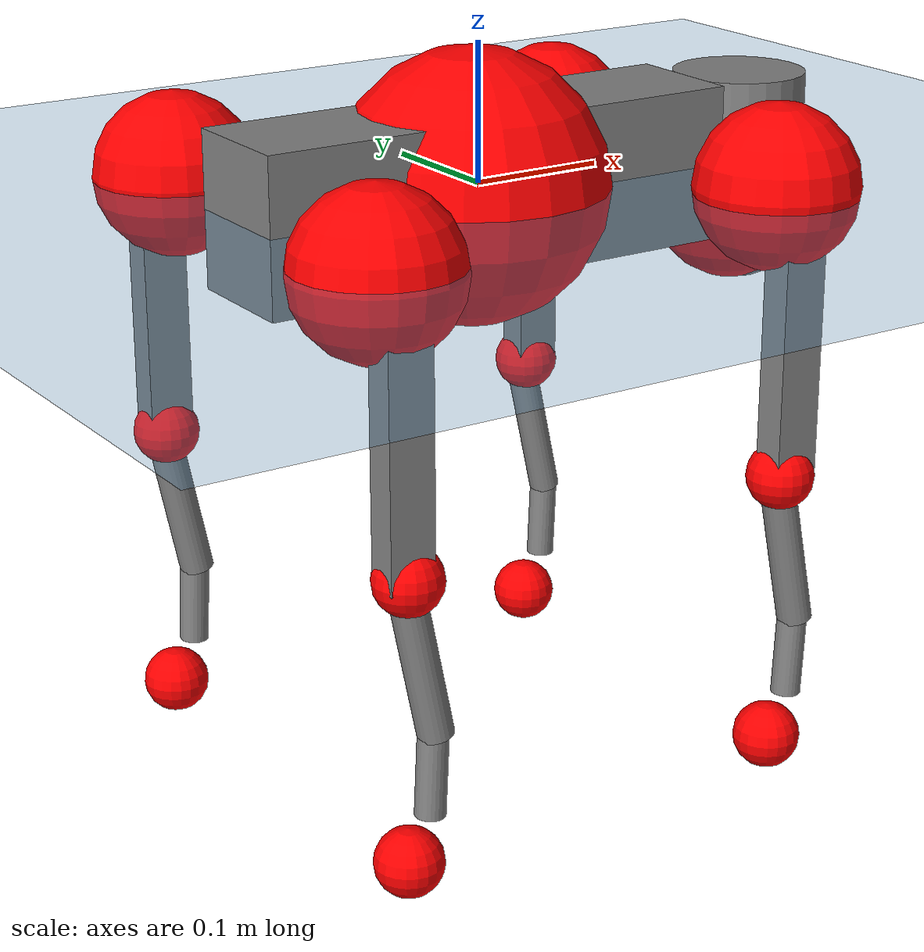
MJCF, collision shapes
<mujoco model="go2">
  <compiler angle="radian" assetdir="assets" balanceinertia="true" inertiafromgeom="false"/>

  <option timestep="0.005" density="1.2" viscosity="2e-05"/>

  <size nkey="1"/>

  <visual>
    <quality shadowsize="8192"/>
    <map shadowclip="0.5"/>
  </visual>

  <default>
    <default class="/">
      <geom contype="0" conaffinity="0" group="1" solref="-1000 -80"/>
      <site size="0.01 0.005 0.005" group="5"/>
      <general forcelimited="true" biastype="affine" gainprm="20" biasprm="0 -20 -0.5"/>
      <default class="go2">
        <joint armature="0.01" damping="0.01" frictionloss="0.2"/>
        <geom condim="1" margin="0.001"/>
        <default class="visual">
          <geom type="mesh" group="2"/>
        </default>
        <default class="collision">
          <geom group="3"/>
          <default class="foot">
            <geom size="0.022 0 0" condim="6" priority="1" friction="0.8 0.02 0.01" solimp="0.015 1 0.022"/>
          </default>
        </default>
        <default class="reward_collision_sphere">
          <geom group="5" rgba="1 0 0 1"/>
        </default>
      </default>
    </default>
  </default>

  <asset>
    <texture type="skybox" colorspace="auto" name="//unnamed_texture_0" builtin="gradient" rgb1="0.95 0.95 0.95" rgb2="0.95 0.95 0.95" width="100" height="600"/>
    <texture type="2d" colorspace="auto" name="texplane" builtin="checker" rgb1="0.345 0.575 0.748" rgb2="0.345 0.575 0.748" markrgb="1 1 1" width="512" height="512"/>
    <material name="MatPlane" class="/" texture="texplane" texuniform="true" texrepeat="2 2" specular="0.9"/>
    <material name="metal" class="/" rgba="0.9 0.95 0.95 1"/>
    <material name="black" class="/" rgba="0 0 0 1"/>
    <material name="white" class="/"/>
    <material name="gray" class="/" rgba="0.671705 0.692426 0.77427 1"/>
    <mesh name="base_0" class="/" file="base_0.obj"/>
    <mesh name="base_1" class="/" file="base_1.obj"/>
    <mesh name="base_2" class="/" file="base_2.obj"/>
    <mesh name="base_3" class="/" file="base_3.obj"/>
    <mesh name="base_4" class="/" file="base_4.obj"/>
    <mesh name="hip_0" class="/" file="hip_0.obj"/>
    <mesh name="hip_1" class="/" file="hip_1.obj"/>
    <mesh name="thigh_0" class="/" file="thigh_0.obj"/>
    <mesh name="thigh_1" class="/" file="thigh_1.obj"/>
    <mesh name="thigh_mirror_0" class="/" file="thigh_mirror_0.obj"/>
    <mesh name="thigh_mirror_1" class="/" file="thigh_mirror_1.obj"/>
    <mesh name="calf_0" class="/" file="calf_0.obj"/>
    <mesh name="calf_1" class="/" file="calf_1.obj"/>
    <mesh name="calf_mirror_0" class="/" file="calf_mirror_0.obj"/>
    <mesh name="calf_mirror_1" class="/" file="calf_mirror_1.obj"/>
    <mesh name="foot" class="/" file="foot.obj"/>
  </asset>

  <worldbody>
    <geom name="floor" class="/" size="100 100 0.125" type="plane" group="0" material="MatPlane"/>
    <light name="toplight_shadow" class="/" pos="0 0 5" dir="0.0990148 0.0990148 -0.990148" type="directional" ambient="0.04 0.04 0.04" diffuse="0.55 0.55 0.55" specular="0.12 0.12 0.12"/>
    <light name="toplight_fill" class="/" pos="0 0 5" dir="0.0990148 0.0990148 -0.990148" type="directional" castshadow="false" ambient="0.04 0.04 0.04" diffuse="0.3 0.3 0.3" specular="0.08 0.08 0.08"/>
    <body name="trunk" childclass="go2" pos="-0.00617065 -0.00157962 -0.000522934" quat="0.999997 0.000655064 -0.0014 -0.00184268">
      <inertial pos="0.0228721 0.000905354 -0.00710202" quat="0.000683371 0.713137 -0.0139356 0.700886" mass="7.15917" diaginertia="0.0414799 0.205122 0.0205501"/>
      <joint name="//unnamed_joint_0" type="free" armature="0" damping="0" frictionloss="0"/>
      <geom name="//unnamed_geom_1" class="visual" material="black" mesh="base_0"/>
      <geom name="//unnamed_geom_2" class="visual" material="black" mesh="base_1"/>
      <geom name="//unnamed_geom_3" class="visual" material="black" mesh="base_2"/>
      <geom name="//unnamed_geom_4" class="visual" material="white" mesh="base_3"/>
      <geom name="//unnamed_geom_5" class="visual" material="gray" mesh="base_4"/>
      <geom name="trunk_1" class="collision" size="0.184382 0.0458259 0.0558732" type="box"/>
      <geom name="trunk_2" class="collision" size="0.0490116 0.0441105" pos="0.235044 0 0.00959267" type="cylinder"/>
      <geom name="trunk_3" class="collision" size="0.0460709" pos="0.241642 0 -0.057556"/>
      <geom name="//unnamed_geom_9" class="reward_collision_sphere" size="0.0980232"/>
      <geom name="//unnamed_geom_10" class="reward_collision_sphere" size="0.0588139" pos="0.230921 0 -0.043167"/>
      <site name="imu" pos="-0.0299928 -0.000862061 0.0186045" size="0.00980232"/>
      <camera name="track" pos="0 -2.31343 0" quat="0.707107 0.707107 0 0" mode="trackcom"/>
      <camera name="ego_camera" pos="0.257312 0 0.043167" quat="-0.5 -0.5 0.5 0.5"/>
      <body name="FL_hip" pos="0.159752 0.0516768 0.000798263" quat="1 4.00909e-05 -0.000287553 0.000284572">
        <inertial pos="-0.00168469 0.00439736 -0.00313655" quat="0.496351 0.507484 0.503024 0.493015" mass="0.653279" diaginertia="0.000320163 0.00127249 0.000389307"/>
        <joint name="FL_hip_joint" pos="0 0 0" axis="0.999514 0.02731 0.0150186" range="-1.16232 1.00382" armature="0.0101531" damping="0.0107152" frictionloss="0.188772"/>
        <geom name="//unnamed_geom_11" class="visual" material="metal" mesh="hip_0"/>
        <geom name="//unnamed_geom_12" class="visual" material="gray" mesh="hip_1"/>
        <geom name="//unnamed_geom_13" class="collision" size="0.0450907 0.0196046" pos="0 0.092537 0" quat="0.707107 0.707107 0 0" type="cylinder"/>
        <geom name="//unnamed_geom_14" class="reward_collision_sphere" size="0.0588139" pos="0 0.0809699 0"/>
        <body name="FL_thigh" pos="0.000158912 0.110382 -0.000531428" quat="0.999998 -0.0013546 -0.000911349 0.000639333">
          <inertial pos="-0.00507163 -0.0246539 -0.0267424" quat="0.829547 0.0849082 -0.0198204 0.551588" mass="1.0938" diaginertia="0.00233882 0.0126647 0.000672247"/>
          <joint name="FL_thigh_joint" pos="0 0 0" axis="0.00158252 0.999956 -0.00920132" stiffness="0.0337389" range="-1.55621 3.48826" armature="0.00930698" damping="0" frictionloss="0.179949"/>
          <geom name="//unnamed_geom_15" class="visual" material="metal" mesh="thigh_0"/>
          <geom name="//unnamed_geom_16" class="visual" material="gray" mesh="thigh_1"/>
          <geom name="//unnamed_geom_17" class="collision" size="0.104395 0.0120078 0.0166639" pos="0 0 -0.102162" quat="0.707107 0 0.707107 0" type="box"/>
          <body name="FL_calf" pos="-0.000433791 0.00458278 -0.203939" quat="1 -7.60956e-05 0.000216011 0.000442663">
            <inertial pos="0.00835193 0.000133238 -0.137008" quat="0.706972 0.00327886 -0.00770587 0.707192" mass="0.225251" diaginertia="0.000526276 0.00274494 4.06341e-05"/>
            <joint name="FL_calf_joint" pos="0 0 0" axis="-0.00970838 0.999914 0.00883033" range="-2.62995 -0.802806" armature="0.00987564" damping="0.0231905" frictionloss="0.196449"/>
            <geom name="//unnamed_geom_18" class="visual" material="gray" mesh="calf_0"/>
            <geom name="//unnamed_geom_19" class="visual" material="black" mesh="calf_1"/>
            <geom name="FL_calf0" class="collision" size="0.0117628 0.0588139" pos="0.00659774 0 -0.057556" quat="0.994493 0 -0.104807 0" type="cylinder"/>
            <geom name="//unnamed_geom_21" class="collision" size="0.0107826 0.0318576" pos="0.0164943 0 -0.141972" quat="0.999688 0 0.0249974 0" type="cylinder"/>
            <geom name="//unnamed_geom_22" class="visual" pos="0 0 -0.204324" quat="1 0 0 0" material="black" mesh="foot"/>
            <geom name="FL_foot" class="foot" size="0.01606" pos="-0.00164943 0 -0.204324"/>
            <geom name="//unnamed_geom_24" class="reward_collision_sphere" size="0.0245058"/>
            <geom name="//unnamed_geom_25" class="reward_collision_sphere" size="0.0245058" pos="-0.00164943 0 -0.204324"/>
            <site name="FL_foot" class="foot" pos="-0.00164943 0 -0.204324" size="0.00980232"/>
          </body>
        </body>
      </body>
      <body name="FR_hip" pos="0.162902 -0.0523424 0.0051525" quat="0.999999 0.000632571 0.00036054 0.00118165">
        <inertial pos="-0.00433073 0.00179066 0.000355786" quat="0.507775 0.492228 0.499209 0.500666" mass="0.64735" diaginertia="0.0003485 0.0012426 0.000397257"/>
        <joint name="FR_hip_joint" pos="0 0 0" axis="1 -0.000246702 -0.000186182" range="-1.0163 1.04865" armature="0.010715" damping="0.0197395" frictionloss="0.230689"/>
        <geom name="//unnamed_geom_26" class="visual" pos="0 1.72007e-09 7.37772e-08" quat="4.63268e-05 1 0 0" material="metal" mesh="hip_0"/>
        <geom name="//unnamed_geom_27" class="visual" pos="0 2.78843e-09 -1.82479e-07" quat="4.63268e-05 1 0 0" material="gray" mesh="hip_1"/>
        <geom name="//unnamed_geom_28" class="collision" size="0.0450907 0.0196046" pos="0 -0.092537 0" quat="0.707107 0.707107 0 0" type="cylinder"/>
        <geom name="//unnamed_geom_29" class="reward_collision_sphere" size="0.0588139" pos="0 -0.0809699 0"/>
        <body name="FR_thigh" pos="-0.000382544 -0.10457 -0.000103596" quat="1 0.000649765 0.000567846 0.000227294">
          <inertial pos="-0.00327266 0.0282527 -0.033156" quat="0.55129 -0.0171739 0.0902209 0.829243" mass="1.06692" diaginertia="0.00220483 0.0117635 0.000680727"/>
          <joint name="FR_thigh_joint" pos="0 0 0" axis="-0.0158083 -0.999847 0.00749567" stiffness="0.00329548" range="-3.53967 1.5098" armature="0.00985736" damping="0.00247703" frictionloss="0.204133"/>
          <geom name="//unnamed_geom_30" class="visual" material="metal" mesh="thigh_mirror_0"/>
          <geom name="//unnamed_geom_31" class="visual" material="gray" mesh="thigh_mirror_1"/>
          <geom name="//unnamed_geom_32" class="collision" size="0.104395 0.0120078 0.0166639" pos="0 0 -0.102162" quat="0.707107 0 0.707107 0" type="box"/>
          <body name="FR_calf" pos="-0.00214273 0.00276136 -0.20588" quat="1 -7.1373e-05 7.45871e-05 -6.89263e-05">
            <inertial pos="0.0059773 0.00230431 -0.135516" quat="0.704785 -0.00256507 -0.0194011 0.709151" mass="0.225274" diaginertia="0.000572067 0.00305075 4.44045e-05"/>
            <joint name="FR_calf_joint" pos="0 0 0" axis="0.0240704 -0.999692 0.00606284" stiffness="0.0231337" range="0.868152 2.68545" armature="0.00889212" damping="0" frictionloss="0.184556"/>
            <geom name="//unnamed_geom_33" class="visual" material="gray" mesh="calf_mirror_0"/>
            <geom name="//unnamed_geom_34" class="visual" material="black" mesh="calf_mirror_1"/>
            <geom name="FR_calf0" class="collision" size="0.012743 0.0588139" pos="0.00824717 0 -0.057556" quat="0.995004 0 -0.0998334 0" type="cylinder"/>
            <geom name="//unnamed_geom_36" class="collision" size="0.0107826 0.0318576" pos="0.0164943 0 -0.141972" quat="0.999688 0 0.0249974 0" type="cylinder"/>
            <geom name="//unnamed_geom_37" class="visual" pos="0 0 -0.204324" quat="1 0 0 0" material="black" mesh="foot"/>
            <geom name="FR_foot" class="foot" size="0.0216079" pos="-0.00164943 0 -0.204324"/>
            <geom name="//unnamed_geom_39" class="reward_collision_sphere" size="0.0245058"/>
            <geom name="//unnamed_geom_40" class="reward_collision_sphere" size="0.0245058" pos="-0.00164943 0 -0.204324"/>
            <site name="FR_foot" class="foot" pos="-0.00164943 0 -0.204324" size="0.00980232"/>
          </body>
        </body>
      </body>
      <body name="RL_hip" pos="-0.161463 0.0540075 0.00285956" quat="1 -3.15361e-05 -0.000167172 -0.000525887">
        <inertial pos="0.0056325 -0.00301773 0.0022335" quat="0.512037 0.471906 0.515001 0.499897" mass="0.616201" diaginertia="0.00035558 0.00126499 0.000379037"/>
        <joint name="RL_hip_joint" pos="0 0 0" axis="-0.99969 -0.00873874 0.0233308" range="-1.09144 1.05824" armature="0.0112153" damping="0" frictionloss="0.155028"/>
        <geom name="//unnamed_geom_41" class="visual" pos="1.17214e-09 0 2.29767e-07" quat="4.63268e-05 0 1 0" material="metal" mesh="hip_0"/>
        <geom name="//unnamed_geom_42" class="visual" pos="1.90018e-09 0 2.0377e-07" quat="4.63268e-05 0 1 0" material="gray" mesh="hip_1"/>
        <geom name="//unnamed_geom_43" class="collision" size="0.0450907 0.0196046" pos="0 0.092537 0" quat="0.707107 0.707107 0 0" type="cylinder"/>
        <geom name="//unnamed_geom_44" class="reward_collision_sphere" size="0.0588139" pos="0 0.0809699 0"/>
        <body name="RL_thigh" pos="-0.000863574 0.114421 -0.0042367" quat="0.999999 -0.000810986 0.00070424 0.000241686">
          <inertial pos="-0.0026319 -0.0245826 -0.0288188" quat="0.825343 0.0833512 -0.020156 0.558082" mass="1.03946" diaginertia="0.00236013 0.0127989 0.000721393"/>
          <joint name="RL_thigh_joint" pos="0 0 0" axis="0.00290712 0.999985 -0.00456172" range="-0.498044 4.54947" armature="0.00870027" damping="0.00502223" frictionloss="0.199764"/>
          <geom name="//unnamed_geom_45" class="visual" material="metal" mesh="thigh_0"/>
          <geom name="//unnamed_geom_46" class="visual" material="gray" mesh="thigh_1"/>
          <geom name="//unnamed_geom_47" class="collision" size="0.104395 0.0120078 0.0166639" pos="0 0 -0.102162" quat="0.707107 0 0.707107 0" type="box"/>
          <body name="RL_calf" pos="-0.000106463 -0.000836322 -0.19933" quat="0.999999 0.000607553 -0.000813132 -0.000755018">
            <inertial pos="0.00359636 -0.00645075 -0.13436" quat="0.71067 0.00154239 -0.00450121 0.703509" mass="0.232864" diaginertia="0.000582153 0.00314712 4.7357e-05"/>
            <joint name="RL_calf_joint" pos="0 0 0" axis="-0.00463789 0.999712 -0.0235322" stiffness="0.0326252" range="-2.71763 -0.823697" armature="0.00965155" damping="0.0150316" frictionloss="0.142277"/>
            <geom name="//unnamed_geom_48" class="visual" material="gray" mesh="calf_0"/>
            <geom name="//unnamed_geom_49" class="visual" material="black" mesh="calf_1"/>
            <geom name="RL_calf0" class="collision" size="0.012743 0.0588139" pos="0.00824717 0 -0.057556" quat="0.995004 0 -0.0998334 0" type="cylinder"/>
            <geom name="//unnamed_geom_51" class="collision" size="0.0107826 0.0318576" pos="0.0164943 0 -0.141972" quat="0.999688 0 0.0249974 0" type="cylinder"/>
            <geom name="//unnamed_geom_52" class="visual" pos="0 0 -0.204324" quat="1 0 0 0" material="black" mesh="foot"/>
            <geom name="RL_foot" class="foot" size="0.021139" pos="-0.00164943 0 -0.204324"/>
            <geom name="//unnamed_geom_54" class="reward_collision_sphere" size="0.0245058"/>
            <geom name="//unnamed_geom_55" class="reward_collision_sphere" size="0.0245058" pos="-0.00164943 0 -0.204324"/>
            <site name="RL_foot" class="foot" pos="-0.00164943 0 -0.204324" size="0.00980232"/>
          </body>
        </body>
      </body>
      <body name="RR_hip" pos="-0.157587 -0.0539483 -0.00418319" quat="0.999996 -0.00230132 0.000855052 -0.00101618">
        <inertial pos="-0.00109618 -0.0044421 0.00526864" quat="0.495592 0.504182 0.49777 0.502409" mass="0.634155" diaginertia="0.000333924 0.00121183 0.000377211"/>
        <joint name="RR_hip_joint" pos="0 0 0" axis="-0.999564 -0.0197339 0.0219753" range="-1.01407 1.0919" armature="0.00953076" damping="0" frictionloss="0.219494"/>
        <geom name="//unnamed_geom_56" class="visual" pos="-1.16065e-09 1.72007e-09 1.5599e-07" quat="2.14617e-09 4.63268e-05 4.63268e-05 -1" material="metal" mesh="hip_0"/>
        <geom name="//unnamed_geom_57" class="visual" pos="-1.92861e-09 2.78843e-09 3.8625e-07" quat="2.14617e-09 4.63268e-05 4.63268e-05 -1" material="gray" mesh="hip_1"/>
        <geom name="//unnamed_geom_58" class="collision" size="0.0450907 0.0196046" pos="0 -0.092537 0" quat="0.707107 0.707107 0 0" type="cylinder"/>
        <geom name="//unnamed_geom_59" class="reward_collision_sphere" size="0.0588139" pos="0 -0.0809699 0"/>
        <body name="RR_thigh" pos="-0.00141752 -0.110699 0.00589437" quat="1 -5.6298e-05 -2.95276e-05 0.000518556">
          <inertial pos="-0.005506 0.0252758 -0.031328" quat="0.550469 -0.0195538 0.085593 0.830226" mass="1.13911" diaginertia="0.00221049 0.0119583 0.000709636"/>
          <joint name="RR_thigh_joint" pos="0 0 0" axis="0.00806846 -0.999888 -0.0126334" range="-4.54777 0.449821" armature="0.00877057" damping="0.0204134" frictionloss="0.21972"/>
          <geom name="//unnamed_geom_60" class="visual" material="metal" mesh="thigh_mirror_0"/>
          <geom name="//unnamed_geom_61" class="visual" material="gray" mesh="thigh_mirror_1"/>
          <geom name="//unnamed_geom_62" class="collision" size="0.104395 0.0120078 0.0166639" pos="0 0 -0.102162" quat="0.707107 0 0.707107 0" type="box"/>
          <body name="RR_calf" pos="0.00422115 0.00193523 -0.204085" quat="1 0.00056695 7.60628e-05 -6.57255e-05">
            <inertial pos="0.00718337 0.00308259 -0.135724" quat="0.703642 -0.00519985 0.00146152 0.710534" mass="0.224778" diaginertia="0.000583616 0.0030722 4.18477e-05"/>
            <joint name="RR_calf_joint" pos="0 0 0" axis="-0.00975966 -0.999762 -0.0195004" range="0.809797 2.74011" armature="0.00880981" damping="0" frictionloss="0.174258"/>
            <geom name="//unnamed_geom_63" class="visual" material="gray" mesh="calf_mirror_0"/>
            <geom name="//unnamed_geom_64" class="visual" material="black" mesh="calf_mirror_1"/>
            <geom name="RR_calf0" class="collision" size="0.012743 0.0588139" pos="0.00824717 0 -0.057556" quat="0.995004 0 -0.0998334 0" type="cylinder"/>
            <geom name="//unnamed_geom_66" class="collision" size="0.0107826 0.0318576" pos="0.0164943 0 -0.141972" quat="0.999688 0 0.0249974 0" type="cylinder"/>
            <geom name="//unnamed_geom_67" class="visual" pos="0 0 -0.204324" quat="1 0 0 0" material="black" mesh="foot"/>
            <geom name="RR_foot" class="foot" size="0.0240064" pos="-0.00164943 0 -0.204324"/>
            <geom name="//unnamed_geom_69" class="reward_collision_sphere" size="0.0245058"/>
            <geom name="//unnamed_geom_70" class="reward_collision_sphere" size="0.0245058" pos="-0.00164943 0 -0.204324"/>
            <site name="RR_foot" class="foot" pos="-0.00164943 0 -0.204324" size="0.00980232"/>
          </body>
        </body>
      </body>
    </body>
  </worldbody>

  <contact>
    <pair class="/" geom1="floor" geom2="FL_foot" name="//unnamed_contact_0"/>
    <pair class="/" geom1="floor" geom2="FR_foot" name="//unnamed_contact_1"/>
    <pair class="/" geom1="floor" geom2="RL_foot" name="//unnamed_contact_2"/>
    <pair class="/" geom1="floor" geom2="RR_foot" name="//unnamed_contact_3"/>
  </contact>

  <actuator>
    <general name="FL_hip" class="/" joint="FL_hip_joint" forcerange="-23.3326 23.3326" gainprm="19.3938" biasprm="0 -19.3938 -0.512916"/>
    <general name="FL_thigh" class="/" joint="FL_thigh_joint" forcerange="-23.2896 23.2896" gainprm="19.3938" biasprm="0 -19.3938 -0.512916"/>
    <general name="FL_calf" class="/" joint="FL_calf_joint" forcerange="-40.3994 40.3994" gainprm="19.3938" biasprm="0 -19.3938 -0.512916"/>
    <general name="FR_hip" class="/" joint="FR_hip_joint" forcerange="-22.5541 22.5541" gainprm="19.3938" biasprm="0 -19.3938 -0.512916"/>
    <general name="FR_thigh" class="/" joint="FR_thigh_joint" forcerange="-23.2141 23.2141" gainprm="19.3938" biasprm="0 -19.3938 -0.512916"/>
    <general name="FR_calf" class="/" joint="FR_calf_joint" forcerange="-44.105 44.105" gainprm="19.3938" biasprm="0 -19.3938 -0.512916"/>
    <general name="RL_hip" class="/" joint="RL_hip_joint" forcerange="-18.6429 18.6429" gainprm="19.3938" biasprm="0 -19.3938 -0.512916"/>
    <general name="RL_thigh" class="/" joint="RL_thigh_joint" forcerange="-23.0238 23.0238" gainprm="19.3938" biasprm="0 -19.3938 -0.512916"/>
    <general name="RL_calf" class="/" joint="RL_calf_joint" forcerange="-53.1308 53.1308" gainprm="19.3938" biasprm="0 -19.3938 -0.512916"/>
    <general name="RR_hip" class="/" joint="RR_hip_joint" forcerange="-24.5047 24.5047" gainprm="19.3938" biasprm="0 -19.3938 -0.512916"/>
    <general name="RR_thigh" class="/" joint="RR_thigh_joint" forcerange="-19.0433 19.0433" gainprm="19.3938" biasprm="0 -19.3938 -0.512916"/>
    <general name="RR_calf" class="/" joint="RR_calf_joint" forcerange="-49.7654 49.7654" gainprm="19.3938" biasprm="0 -19.3938 -0.512916"/>
  </actuator>

  <sensor>
    <gyro site="imu" name="imu_angular_velocity"/>
    <velocimeter site="imu" name="imu_linear_velocity"/>
    <framelinvel objtype="site" objname="FL_foot" name="FL_foot_global_linear_velocity"/>
    <framelinvel objtype="site" objname="FR_foot" name="FR_foot_global_linear_velocity"/>
    <framelinvel objtype="site" objname="RL_foot" name="RL_foot_global_linear_velocity"/>
    <framelinvel objtype="site" objname="RR_foot" name="RR_foot_global_linear_velocity"/>
  </sensor>

  <keyframe>
    <key name="home" qpos="0 0 0.325 1 0 0 0 0.1 0.8 -1.5 -0.1 -0.8 1.5 -0.1 0.8 -1.5 0.1 -0.8 1.5"/>
  </keyframe>
</mujoco>
